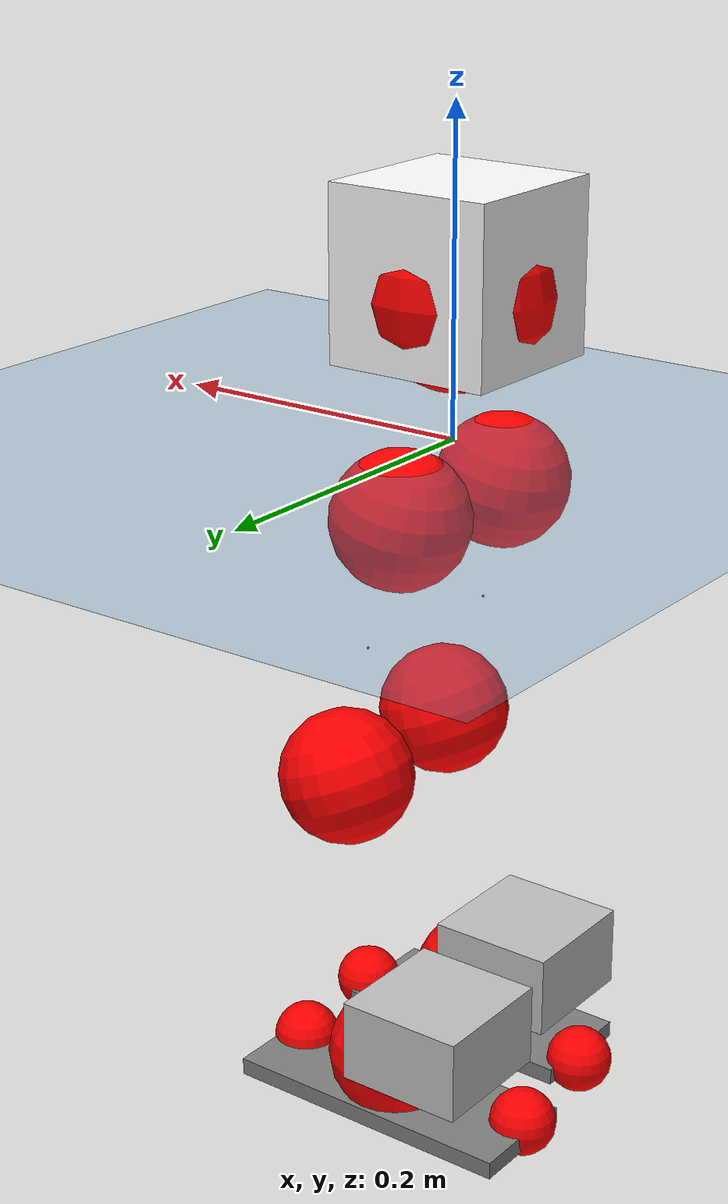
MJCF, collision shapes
<mujoco model="pi_12dof_release_v1">
  <compiler angle="radian" assetdir="assets" balanceinertia="true" inertiafromgeom="false"/>

  <option timestep="0.005" density="1.2" viscosity="2e-05"/>

  <size nkey="1"/>

  <visual>
    <quality shadowsize="8192"/>
    <map shadowclip="0.5"/>
  </visual>

  <default>
    <default class="/">
      <joint armature="0.01" damping="0.01" frictionloss="0.01"/>
      <geom contype="0" conaffinity="0" group="1" solref="-1000 -80"/>
      <site size="0.01 0.005 0.005" group="5"/>
      <general forcelimited="true" biastype="affine" gainprm="20" biasprm="0 -20 -0.5"/>
      <default class="foot">
        <geom size="0.0845 0.036 0.005" type="box" condim="6" group="4" priority="1" friction="0.9 0.2 0.2" solimp="0.015 1 0.005"/>
      </default>
      <default class="reward_collision_sphere">
        <geom group="5" rgba="1 0 0 1"/>
      </default>
    </default>
  </default>

  <asset>
    <texture type="skybox" colorspace="auto" name="//unnamed_texture_0" builtin="gradient" rgb1="0.95 0.95 0.95" rgb2="0.95 0.95 0.95" width="100" height="600"/>
    <texture type="2d" colorspace="auto" name="texplane" builtin="checker" rgb1="0.345 0.575 0.748" rgb2="0.345 0.575 0.748" markrgb="1 1 1" width="512" height="512"/>
    <material name="MatPlane" class="/" texture="texplane" texuniform="true" texrepeat="2 2" specular="0.9"/>
    <mesh name="baselink_1" class="/" file="baselink_1.STL"/>
    <mesh name="r_hip_pitch_link" class="/" file="r_hip_pitch_link.STL"/>
    <mesh name="r_hip_roll_link" class="/" file="r_hip_roll_link.STL"/>
    <mesh name="r_thigh_link" class="/" file="r_thigh_link.STL"/>
    <mesh name="r_calf_link" class="/" file="r_calf_link.STL"/>
    <mesh name="r_ankle_pitch_link" class="/" file="r_ankle_pitch_link.STL"/>
    <mesh name="r_ankle_roll_link" class="/" file="r_ankle_roll_link.STL"/>
    <mesh name="l_hip_pitch_link" class="/" file="l_hip_pitch_link.STL"/>
    <mesh name="l_hip_roll_link" class="/" file="l_hip_roll_link.STL"/>
    <mesh name="l_thigh_link" class="/" file="l_thigh_link.STL"/>
    <mesh name="l_calf_link" class="/" file="l_calf_link.STL"/>
    <mesh name="l_ankle_pitch_link" class="/" file="l_ankle_pitch_link.STL"/>
    <mesh name="l_ankle_roll_link" class="/" file="l_ankle_roll_link.STL"/>
  </asset>

  <worldbody>
    <geom name="floor" class="/" size="100 100 0.125" type="plane" group="0" material="MatPlane"/>
    <light name="toplight_shadow" class="/" pos="0 0 5" dir="0.0990148 0.0990148 -0.990148" type="directional" ambient="0.04 0.04 0.04" diffuse="0.55 0.55 0.55" specular="0.12 0.12 0.12"/>
    <light name="toplight_fill" class="/" pos="0 0 5" dir="0.0990148 0.0990148 -0.990148" type="directional" castshadow="false" ambient="0.04 0.04 0.04" diffuse="0.3 0.3 0.3" specular="0.08 0.08 0.08"/>
    <body name="trunk" pos="-0.00205356 -0.000751295 0.00139227" quat="1 -0.000112538 -0.000204832 -0.000132832">
      <inertial pos="0.0101846 0.00395214 0.0502879" quat="0.703063 0.00723163 0.0107105 0.71101" mass="2.46053" diaginertia="0.0328966 0.00111809 0.013963"/>
      <joint name="//unnamed_joint_0" type="free"/>
      <geom name="//unnamed_geom_1" class="/" type="mesh" density="0" rgba="1 1 1 1" mesh="baselink_1"/>
      <geom name="//unnamed_geom_2" class="/" size="0.0531577 0.0531577 0.0531577" pos="0 0 0.100912" type="box" rgba="1 1 1 1"/>
      <geom name="//unnamed_geom_3" class="reward_collision_sphere" size="0.0584735" pos="0 0 0.0882982"/>
      <site name="imu" class="/" pos="-0.0261525 -0.00170165 0.0258937" size="0.0106315"/>
      <camera name="track" class="/" pos="0 -1.31298 0" quat="0.707107 0.707107 0 0" mode="trackcom"/>
      <camera name="ego_camera" class="/" pos="0.0953677 0 0.227053" quat="-0.5 -0.5 0.5 0.5"/>
      <body name="r_hip_pitch_link" pos="0.00251455 -0.0116468 -0.0408391" quat="0.992198 6.27661e-05 -0.124673 -3.17035e-05">
        <inertial pos="0.000491747 -0.0339583 -0.00020648" quat="-0.0193364 0.705159 -0.0295069 0.708171" mass="0.483509" diaginertia="0.000392988 1.35552e-05 0.000286485"/>
        <joint name="r_hip_pitch_joint" class="/" pos="0 0 0" axis="0.00567063 -0.999976 0.00402374" range="-1.69996 1.36587" armature="0.0126802" damping="0.0143775" frictionloss="0.0102207"/>
        <geom name="//unnamed_geom_4" class="/" type="mesh" density="0" rgba="0.75294 0.75294 0.75294 1" mesh="r_hip_pitch_link"/>
        <geom name="//unnamed_geom_5" class="/" size="0.000531577 0.000531577 0.000531577" type="box" rgba="0.75294 0.75294 0.75294 1"/>
        <body name="r_hip_roll_link" pos="0.000615195 -0.0429958 0.000408077" quat="0.999997 -0.00172747 -0.00160125 0.000450365">
          <inertial pos="0.001299 -0.000536852 -0.077791" quat="0.70404 -0.0662916 -0.0774783 0.702802" mass="0.466879" diaginertia="0.0010886 3.57539e-05 0.000409001"/>
          <joint name="r_hip_roll_joint" class="/" pos="0 0 0" axis="-0.999927 0.0118927 0.00212177" range="-0.0725918 0.502499" armature="0.0113183" damping="0.0336959" frictionloss="0.00763572"/>
          <geom name="//unnamed_geom_6" class="/" type="mesh" density="0" rgba="0.75294 0.75294 0.75294 1" mesh="r_hip_roll_link"/>
          <geom name="//unnamed_geom_7" class="/" size="0.000531577 0.000531577 0.000531577" type="box" rgba="0.75294 0.75294 0.75294 1"/>
          <geom name="//unnamed_geom_8" class="reward_collision_sphere" size="0.0425262"/>
          <body name="r_thigh_link" pos="-0.00498526 -0.00432933 -0.083673" quat="0.999999 -0.000793497 -0.000845387 0.000126027">
            <inertial pos="0.00159974 0.00377829 -0.0603502" quat="0.737984 0.674817 0.000704636 -0.00064539" mass="0.130559" diaginertia="0.000421335 1.14899e-05 0.000184654"/>
            <joint name="r_thigh_joint" class="/" pos="0 0 0" axis="-0.00261764 -0.00610496 -0.999978" range="-0.258817 0.528006" armature="0.00747616" damping="0" frictionloss="0.0106422"/>
            <geom name="//unnamed_geom_9" class="/" type="mesh" density="0" rgba="0.75294 0.75294 0.75294 1" mesh="r_thigh_link"/>
            <geom name="//unnamed_geom_10" class="/" size="0.000531577 0.000531577 0.000531577" type="box" rgba="0.75294 0.75294 0.75294 1"/>
            <body name="r_calf_link" pos="0.00548881 0.00320918 -0.0880489" quat="0.947685 3.48276e-05 0.319208 1.28379e-05">
              <inertial pos="0.000768385 0.00662146 -0.0865423" quat="0.999641 0.00835938 -0.015716 -0.0200216" mass="0.983799" diaginertia="0.0125192 0.000411417 0.000592398"/>
              <joint name="r_calf_joint" class="/" pos="0 0 0" axis="-0.011103 -0.999933 -0.00329246" stiffness="0.010137" range="-1.65371 0.664822" armature="0.0105273" damping="0" frictionloss="0.011608"/>
              <geom name="//unnamed_geom_11" class="/" type="mesh" density="0" rgba="0.75294 0.75294 0.75294 1" mesh="r_calf_link"/>
              <geom name="//unnamed_geom_12" class="/" size="0.000531577 0.000531577 0.000531577" type="box" rgba="0.75294 0.75294 0.75294 1"/>
              <geom name="//unnamed_geom_13" class="reward_collision_sphere" size="0.0425262"/>
              <body name="r_ankle_pitch_link" pos="-0.00176266 0.00156599 -0.17304" quat="0.980155 0.00127772 -0.198222 -0.00126153">
                <inertial pos="0.000642893 0.000861851 0.000466419" quat="0.00444427 0.705268 -0.00437303 0.708913" mass="0.197567" diaginertia="0.00100812 2.74372e-05 0.000346848"/>
                <joint name="r_ankle_pitch_joint" class="/" pos="0 0 0" axis="-0.00293259 -0.999961 0.0083244" stiffness="0.00881143" range="-1.38485 0.470224" armature="0.0100396" damping="0.0250205" frictionloss="0.0095393"/>
                <geom name="//unnamed_geom_14" class="/" type="mesh" density="0" rgba="0.75294 0.75294 0.75294 1" mesh="r_ankle_pitch_link"/>
                <geom name="//unnamed_geom_15" class="/" size="0.041463 0.0425262 0.0265789" type="box" rgba="0.75294 0.75294 0.75294 1"/>
                <body name="r_ankle_roll_link" pos="0.0962382 0.00623207 0.000269961" quat="1 0.000265242 -0.000162613 0.000123356">
                  <inertial pos="-0.0276649 -0.000373483 -0.0180677" quat="0.54365 0.415843 0.449171 0.574251" mass="0.594547" diaginertia="0.00366148 0.00012042 0.000863946"/>
                  <joint name="r_ankle_roll_joint" class="/" pos="0 0 0" axis="-0.999999 -0.000406866 -0.00139684" range="-0.181416 0.163642" armature="0.00761276" damping="0" frictionloss="0.0117038"/>
                  <geom name="//unnamed_geom_16" class="/" type="mesh" density="0" rgba="0.75294 0.75294 0.75294 1" mesh="r_ankle_roll_link"/>
                  <geom name="//unnamed_geom_17" class="/" type="mesh" rgba="0.75294 0.75294 0.75294 1" mesh="r_ankle_roll_link"/>
                  <geom name="right_foot" class="foot" size="0.081083 0.0362672 0.00540986" pos="-0.06485 0 -0.0555017"/>
                  <geom name="//unnamed_geom_19" class="reward_collision_sphere" size="0.0425262" pos="-0.0635785 0 -0.0252281"/>
                  <geom name="//unnamed_geom_20" class="reward_collision_sphere" size="0.0212631" pos="0.0190735 0.0131298 -0.0504561"/>
                  <geom name="//unnamed_geom_21" class="reward_collision_sphere" size="0.0212631" pos="-0.152588 0.0131298 -0.0504561"/>
                  <site name="right_foot" class="foot" pos="-0.06485 0 -0.0555017" size="0.0106315"/>
                </body>
              </body>
            </body>
          </body>
        </body>
      </body>
      <body name="l_hip_pitch_link" pos="-0.00432782 0.0175089 -0.037137" quat="0.992198 -3.09813e-07 -0.124676 1.31878e-06">
        <inertial pos="0.00211416 0.0337352 0.00565537" quat="-0.0518997 0.703754 0.0376393 0.707545" mass="0.43429" diaginertia="0.000360326 1.15859e-05 0.000300297"/>
        <joint name="l_hip_pitch_joint" class="/" pos="0 0 0" axis="-0.000208183 0.999997 -0.00230474" stiffness="0.00657322" range="-1.19389 1.76447" armature="0.0112249" damping="0.00370206" frictionloss="0.0114937"/>
        <geom name="//unnamed_geom_22" class="/" type="mesh" density="0" rgba="0.75294 0.75294 0.75294 1" mesh="l_hip_pitch_link"/>
        <geom name="//unnamed_geom_23" class="/" size="0.000531577 0.000531577 0.000531577" type="box" rgba="0.75294 0.75294 0.75294 1"/>
        <body name="l_hip_roll_link" pos="0.00565085 0.0363585 -0.000400167" quat="1 -0.000156119 -0.000271025 0.000150734">
          <inertial pos="0.00457986 0.0016521 -0.0709131" quat="0.699008 -0.0755521 -0.077131 0.706916" mass="0.473185" diaginertia="0.00122847 3.38411e-05 0.000426996"/>
          <joint name="l_hip_roll_joint" class="/" pos="0 0 0" axis="-0.9999 0.012618 0.00640144" range="-0.473466 0.0634156" armature="0.0095523" damping="0" frictionloss="0.0109395"/>
          <geom name="//unnamed_geom_24" class="/" type="mesh" density="0" rgba="0.75294 0.75294 0.75294 1" mesh="l_hip_roll_link"/>
          <geom name="//unnamed_geom_25" class="/" size="0.000531577 0.000531577 0.000531577" type="box" rgba="0.75294 0.75294 0.75294 1"/>
          <geom name="//unnamed_geom_26" class="reward_collision_sphere" size="0.0425262"/>
          <body name="l_thigh_link" pos="0.00151506 0.000784994 -0.0889456" quat="1 0.000113137 0.000792798 -1.70915e-05">
            <inertial pos="-5.82777e-06 -0.0051599 -0.061784" quat="0.678575 0.73452 -0.00399141 -0.000590596" mass="0.123789" diaginertia="0.000385959 9.96333e-06 0.000171888"/>
            <joint name="l_thigh_joint" class="/" pos="0 0 0" axis="-0.000225909 0.00387487 -0.999992" stiffness="0.0185102" range="-0.490118 0.316899" armature="0.0113659" damping="0" frictionloss="0.0106584"/>
            <geom name="//unnamed_geom_27" class="/" type="mesh" density="0" rgba="0.75294 0.75294 0.75294 1" mesh="l_thigh_link"/>
            <geom name="//unnamed_geom_28" class="/" size="0.000531577 0.000531577 0.000531577" type="box" rgba="0.75294 0.75294 0.75294 1"/>
            <body name="l_calf_link" pos="-0.00711167 0.00225038 -0.0889136" quat="0.948087 0.000544628 0.31801 -0.000595419">
              <inertial pos="0.00109451 0.00179149 -0.0821867" quat="0.999173 -0.00941999 -0.000885334 0.0395485" mass="1.01335" diaginertia="0.0125827 0.000462907 0.000608308"/>
              <joint name="l_calf_joint" class="/" pos="0 0 0" axis="-0.0109362 0.999864 -0.0123614" stiffness="0.00893897" range="-0.642015 1.67909" armature="0.0100115" damping="0.0196007" frictionloss="0.0112785"/>
              <geom name="//unnamed_geom_29" class="/" type="mesh" density="0" rgba="0.75294 0.75294 0.75294 1" mesh="l_calf_link"/>
              <geom name="//unnamed_geom_30" class="/" size="0.000531577 0.000531577 0.000531577" type="box" rgba="0.75294 0.75294 0.75294 1"/>
              <geom name="//unnamed_geom_31" class="reward_collision_sphere" size="0.0425262"/>
              <body name="l_ankle_pitch_link" pos="-0.00605183 0.00209803 -0.171675" quat="0.98037 0.000618552 -0.197163 -0.000815766">
                <inertial pos="0.00677145 -0.00129547 0.00199461" quat="-0.000455424 0.705271 0.00407089 0.708926" mass="0.221483" diaginertia="0.00107267 2.67995e-05 0.00037729"/>
                <joint name="l_ankle_pitch_joint" class="/" pos="0 0 0" axis="0.00278383 0.999994 0.00197485" range="-0.504145 1.33191" armature="0.0113169" damping="0.00662445" frictionloss="0.0110504"/>
                <geom name="//unnamed_geom_32" class="/" type="mesh" density="0" rgba="0.75294 0.75294 0.75294 1" mesh="l_ankle_pitch_link"/>
                <geom name="//unnamed_geom_33" class="/" size="0.041463 0.0425262 0.0265789" type="box" rgba="0.75294 0.75294 0.75294 1"/>
                <body name="l_ankle_roll_link" pos="0.0988572 -0.0030714 -0.00144442" quat="0.999997 -0.00252328 -0.00051067 -0.000425435">
                  <inertial pos="-0.0340625 -0.000727712 -0.0166957" quat="0.549291 0.436643 0.44072 0.559811" mass="0.603742" diaginertia="0.00373114 0.000125567 0.000894619"/>
                  <joint name="l_ankle_roll_joint" class="/" pos="0 0 0" axis="-0.999994 -0.000616629 0.00342102" stiffness="0.0249382" range="-0.231924 0.189098" armature="0.00881341" damping="0" frictionloss="0.0108987"/>
                  <geom name="//unnamed_geom_34" class="/" type="mesh" density="0" rgba="0.75294 0.75294 0.75294 1" mesh="l_ankle_roll_link"/>
                  <geom name="//unnamed_geom_35" class="/" type="mesh" rgba="0.75294 0.75294 0.75294 1" mesh="l_ankle_roll_link"/>
                  <geom name="left_foot" class="foot" size="0.0973937 0.0371226 0.00561381" pos="-0.06485 0 -0.0555017"/>
                  <geom name="//unnamed_geom_37" class="reward_collision_sphere" size="0.0425262" pos="-0.0635785 0 -0.0252281"/>
                  <geom name="//unnamed_geom_38" class="reward_collision_sphere" size="0.0212631" pos="0.0190735 -0.0131298 -0.0504561"/>
                  <geom name="//unnamed_geom_39" class="reward_collision_sphere" size="0.0212631" pos="-0.152588 -0.0131298 -0.0504561"/>
                  <site name="left_foot" class="foot" pos="-0.06485 0 -0.0555017" size="0.0106315"/>
                </body>
              </body>
            </body>
          </body>
        </body>
      </body>
    </body>
  </worldbody>

  <contact>
    <pair class="/" geom1="floor" geom2="right_foot" name="//unnamed_contact_1"/>
    <pair class="/" geom1="floor" geom2="left_foot" name="//unnamed_contact_0"/>
  </contact>

  <actuator>
    <general name="r_hip_pitch_joint" class="/" joint="r_hip_pitch_joint" forcerange="-19.6857 19.6857" gainprm="25.1566" biasprm="0 -25.1566 -0.564407"/>
    <general name="r_hip_roll_joint" class="/" joint="r_hip_roll_joint" forcerange="-21.7462 21.7462" gainprm="25.1566" biasprm="0 -25.1566 -0.564407"/>
    <general name="r_thigh_joint" class="/" joint="r_thigh_joint" forcerange="-23.9655 23.9655" gainprm="25.1566" biasprm="0 -25.1566 -0.564407"/>
    <general name="r_calf_joint" class="/" joint="r_calf_joint" forcerange="-18.1306 18.1306" gainprm="25.1566" biasprm="0 -25.1566 -0.564407"/>
    <general name="r_ankle_pitch_joint" class="/" joint="r_ankle_pitch_joint" forcerange="-24.1591 24.1591" gainprm="25.1566" biasprm="0 -25.1566 -0.564407"/>
    <general name="r_ankle_roll_joint" class="/" joint="r_ankle_roll_joint" forcerange="-20.4206 20.4206" gainprm="25.1566" biasprm="0 -25.1566 -0.564407"/>
    <general name="l_hip_pitch_joint" class="/" joint="l_hip_pitch_joint" forcerange="-24.7735 24.7735" gainprm="25.1566" biasprm="0 -25.1566 -0.564407"/>
    <general name="l_hip_roll_joint" class="/" joint="l_hip_roll_joint" forcerange="-27.149 27.149" gainprm="25.1566" biasprm="0 -25.1566 -0.564407"/>
    <general name="l_thigh_joint" class="/" joint="l_thigh_joint" forcerange="-21.053 21.053" gainprm="25.1566" biasprm="0 -25.1566 -0.564407"/>
    <general name="l_calf_joint" class="/" joint="l_calf_joint" forcerange="-22.7581 22.7581" gainprm="25.1566" biasprm="0 -25.1566 -0.564407"/>
    <general name="l_ankle_pitch_joint" class="/" joint="l_ankle_pitch_joint" forcerange="-20.6061 20.6061" gainprm="25.1566" biasprm="0 -25.1566 -0.564407"/>
    <general name="l_ankle_roll_joint" class="/" joint="l_ankle_roll_joint" forcerange="-20.2614 20.2614" gainprm="25.1566" biasprm="0 -25.1566 -0.564407"/>
  </actuator>

  <sensor>
    <gyro site="imu" name="imu_angular_velocity"/>
    <velocimeter site="imu" name="imu_linear_velocity"/>
    <framelinvel objtype="site" objname="left_foot" name="left_foot_global_linear_velocity"/>
    <framelinvel objtype="site" objname="right_foot" name="right_foot_global_linear_velocity"/>
  </sensor>

  <keyframe>
    <key name="home" qpos="0 0 0.291 1 0 0 0 0.4 0 0 -0.8 0.4 0 -0.4 0 0 0.8 -0.4 0"/>
  </keyframe>
</mujoco>
